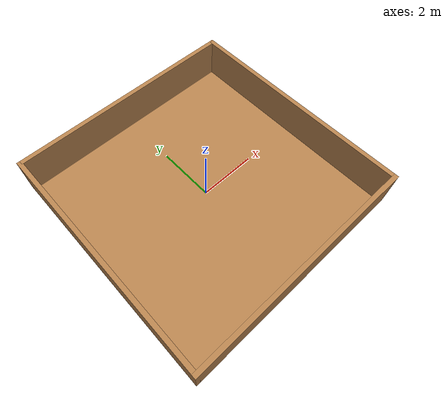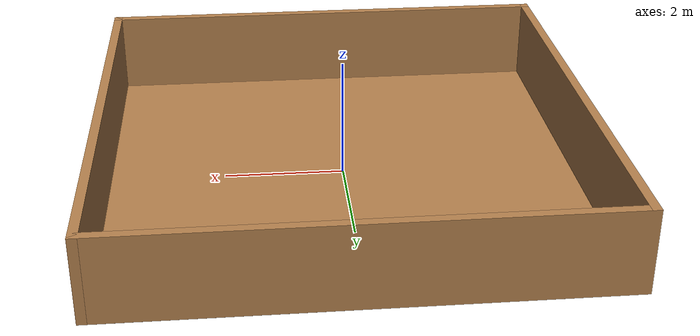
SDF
<?xml version='1.0'?>
<sdf version='1.4'>
	<model name='kubot_square'>
		<pose frame=''>0 0 0 0 -0 0</pose>
		<link name='Wall_0'>
			<collision name='Wall_0_Collision'>
				<geometry>
					<box>
						<size>8.15 0.15 1.4</size>
					</box>
				</geometry>
				<pose frame=''>0 0 0.7 0 -0 0</pose>
			</collision>
			<visual name='Wall_0_Visual'>
				<pose frame=''>0 0 0.7 0 -0 0</pose>
				<geometry>
					<box>
						<size>8.15 0.15 1.4</size>
					</box>
				</geometry>
				<material>
					<script>
						<uri>file://media/materials/scripts/gazebo.material</uri>
						<name>Gazebo/Wood</name>
					</script>
					<ambient>1 1 1 1</ambient>
				</material>
				<meta>
					<layer>0</layer>
				</meta>
			</visual>
			<pose frame=''>0 -4 0 0 -0 0</pose>
		</link>
		<link name='Wall_1'>
			<collision name='Wall_1_Collision'>
				<geometry>
					<box>
						<size>8.15 0.15 1.4</size>
					</box>
				</geometry>
				<pose frame=''>0 0 0.7 0 -0 0</pose>
			</collision>
			<visual name='Wall_1_Visual'>
				<pose frame=''>0 0 0.7 0 -0 0</pose>
				<geometry>
					<box>
						<size>8.15 0.15 1.4</size>
					</box>
				</geometry>
				<material>
					<script>
						<uri>file://media/materials/scripts/gazebo.material</uri>
						<name>Gazebo/Wood</name>
					</script>
					<ambient>1 1 1 1</ambient>
				</material>
				<meta>
					<layer>0</layer>
				</meta>
			</visual>
			<pose frame=''>4 0 0 0 -0 1.5708</pose>
		</link>
		<link name='Wall_2'>
			<collision name='Wall_2_Collision'>
				<geometry>
					<box>
						<size>8.15 0.16 1.4</size>
					</box>
				</geometry>
				<pose frame=''>0 0 0.7 0 -0 0</pose>
			</collision>
			<visual name='Wall_2_Visual'>
				<pose frame=''>0 0 0.7 0 -0 0</pose>
				<geometry>
					<box>
						<size>8.15 0.15 1.4</size>
					</box>
				</geometry>
				<material>
					<script>
						<uri>file://media/materials/scripts/gazebo.material</uri>
						<name>Gazebo/Wood</name>
					</script>
					<ambient>1 1 1 1</ambient>
				</material>
				<meta>
					<layer>0</layer>
				</meta>
			</visual>
			<pose frame=''>0 4 0 0 -0 3.14159</pose>
		</link>
		<link name='Wall_3'>
			<collision name='Wall_3_Collision'>
				<geometry>
					<box>
						<size>8.15 0.15 1.4</size>
					</box>
				</geometry>
				<pose frame=''>0 0 0.7 0 -0 0</pose>
			</collision>
			<visual name='Wall_3_Visual'>
				<pose frame=''>0 0 0.7 0 -0 0</pose>
				<geometry>
					<box>
						<size>8.15 0.15 1.4</size>
					</box>
				</geometry>
				<material>
					<script>
						<uri>file://media/materials/scripts/gazebo.material</uri>
						<name>Gazebo/Wood</name>
					</script>
					<ambient>1 1 1 1</ambient>
				</material>
				<meta>
					<layer>0</layer>
				</meta>
			</visual>
			<pose frame=''>-4 0 0 0 -0 -1.5708</pose>
		</link>
		<link name='Wall_4'>
			<collision name='Wall_4_Collision'>
				<geometry>
					<box>
						<size>8.15 8.15 0.001</size>
					</box>
				</geometry>
				<pose frame=''>0 0 0 0 -0 0</pose>
			</collision>
			<visual name='Wall_4_Visual'>
				<pose frame=''>0 0 0.0 0 -0 0</pose>
				<geometry>
					<box>
						<size>8.15 8.15 0.001</size>
					</box>
				</geometry>
				<material>
					<script>
						<uri>file://media/materials/scripts/gazebo.material</uri>
						<name>Gazebo/Wood</name>
					</script>
					<ambient>1 1 1 1</ambient>
				</material>
				<meta>
					<layer>0</layer>
				</meta>
			</visual>
			<pose frame=''>0 0 0 0 -0 0</pose>
		</link>
		<static>1</static>
	</model>
</sdf>
